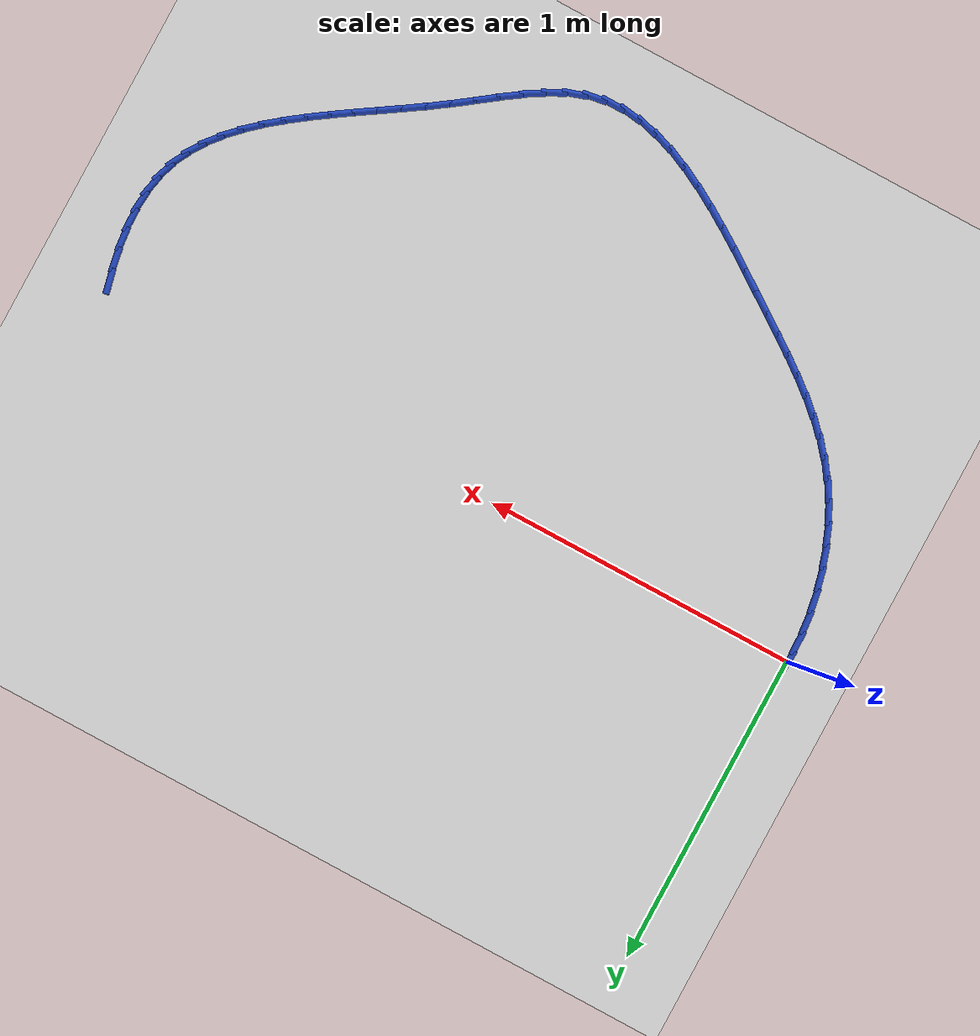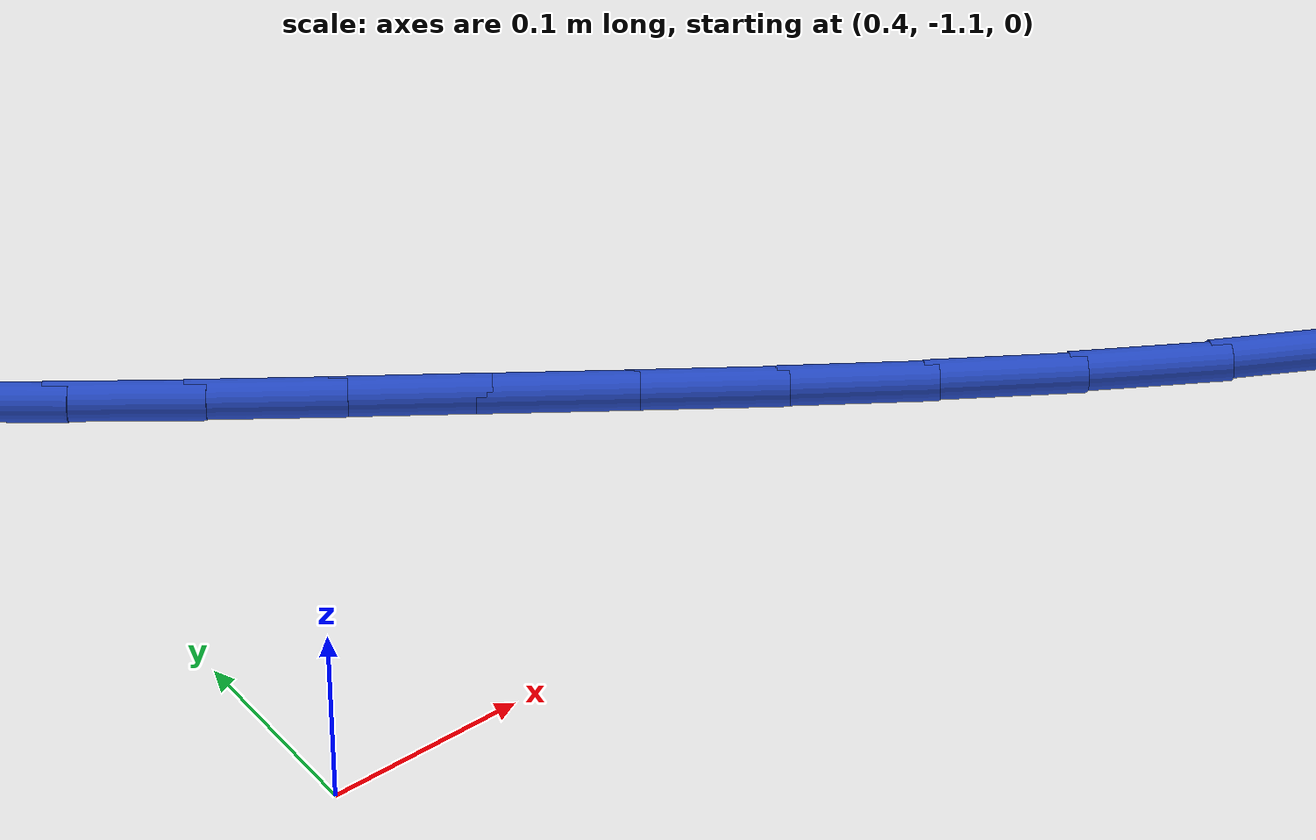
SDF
<sdf version="1.6">
 <world name="default">
  <model name="ground_plane">
   <static>1</static>
   <link name="link">
    <collision name="collision">
     <geometry><plane><normal>0 0 1</normal><size>100 100</size></plane></geometry>
     <surface><friction><ode><mu>100</mu><mu2>50</mu2></ode></friction></surface>
    </collision>
    <visual name="visual">
     <cast_shadows>0</cast_shadows>
     <geometry><plane><normal>0 0 1</normal><size>100 100</size></plane></geometry>
     <material>
      <script><uri>file://media/materials/scripts/gazebo.material</uri><name>Gazebo/WhiteGlow</name></script>
     </material>
    </visual>
   </link>
  </model>
  <model name="line">
   <link name="link_0">
    <pose>6.938893903907228e-18 1.6653345369377348e-16 0.01 0 1.57 1.5015300310632165</pose>
    <collision name="collision">
     <geometry><cylinder><radius>0.01</radius><length>0.08</length></cylinder></geometry>
    </collision>
    <visual name="visual">
     <material>
      <script><name>Gazebo/Blue</name><uri>file://media/materials/scripts/gazebo.material</uri></script>
     </material>
     <geometry><cylinder><radius>0.01</radius><length>0.08</length></cylinder></geometry>
    </visual>
   </link>
   <link name="link_55">
    <pose>2.316494528446898 -0.03746443017512041 0.01 0 1.57 -1.349133985504281</pose>
    <collision name="collision">
     <geometry><cylinder><radius>0.01</radius><length>0.08</length></cylinder></geometry>
    </collision>
    <visual name="visual">
     <material>
      <script><name>Gazebo/Blue</name><uri>file://media/materials/scripts/gazebo.material</uri></script>
     </material>
     <geometry><cylinder><radius>0.01</radius><length>0.08</length></cylinder></geometry>
    </visual>
   </link>
   <link name="link_56">
    <pose>2.331146773982533 -0.10247989588722398 0.01 0 1.57 -1.4071625238766812</pose>
    <collision name="collision">
     <geometry><cylinder><radius>0.01</radius><length>0.08</length></cylinder></geometry>
    </collision>
    <visual name="visual">
     <material>
      <script><name>Gazebo/Blue</name><uri>file://media/materials/scripts/gazebo.material</uri></script>
     </material>
     <geometry><cylinder><radius>0.01</radius><length>0.08</length></cylinder></geometry>
    </visual>
   </link>
   <link name="link_57">
    <pose>2.341644826084744 -0.1660620258689401 0.01 0 1.57 -1.4788177440043515</pose>
    <collision name="collision">
     <geometry><cylinder><radius>0.01</radius><length>0.08</length></cylinder></geometry>
    </collision>
    <visual name="visual">
     <material>
      <script><name>Gazebo/Blue</name><uri>file://media/materials/scripts/gazebo.material</uri></script>
     </material>
     <geometry><cylinder><radius>0.01</radius><length>0.08</length></cylinder></geometry>
    </visual>
   </link>
   <link name="link_58">
    <pose>2.347354452801604 -0.2279624835045941 0.01 0 1.57 -1.5660111835181925</pose>
    <collision name="collision">
     <geometry><cylinder><radius>0.01</radius><length>0.08</length></cylinder></geometry>
    </collision>
    <visual name="visual">
     <material>
      <script><name>Gazebo/Blue</name><uri>file://media/materials/scripts/gazebo.material</uri></script>
     </material>
     <geometry><cylinder><radius>0.01</radius><length>0.08</length></cylinder></geometry>
    </visual>
   </link>
   <link name="link_59">
    <pose>2.347641422181183 -0.28793293217851473 0.01 0 1.57 1.47128684072444</pose>
    <collision name="collision">
     <geometry><cylinder><radius>0.01</radius><length>0.08</length></cylinder></geometry>
    </collision>
    <visual name="visual">
     <material>
      <script><name>Gazebo/Blue</name><uri>file://media/materials/scripts/gazebo.material</uri></script>
     </material>
     <geometry><cylinder><radius>0.01</radius><length>0.08</length></cylinder></geometry>
    </visual>
   </link>
   <link name="link_60">
    <pose>2.3418715022715553 -0.3457250352750275 0.01 0 1.57 1.3494161890201135</pose>
    <collision name="collision">
     <geometry><cylinder><radius>0.01</radius><length>0.08</length></cylinder></geometry>
    </collision>
    <visual name="visual">
     <material>
      <script><name>Gazebo/Blue</name><uri>file://media/materials/scripts/gazebo.material</uri></script>
     </material>
     <geometry><cylinder><radius>0.01</radius><length>0.08</length></cylinder></geometry>
    </visual>
   </link>
   <link name="link_61">
    <pose>2.329410461120791 -0.40109045617846106 0.01 0 1.57 1.2118776064479035</pose>
    <collision name="collision">
     <geometry><cylinder><radius>0.01</radius><length>0.08</length></cylinder></geometry>
    </collision>
    <visual name="visual">
     <material>
      <script><name>Gazebo/Blue</name><uri>file://media/materials/scripts/gazebo.material</uri></script>
     </material>
     <geometry><cylinder><radius>0.01</radius><length>0.08</length></cylinder></geometry>
    </visual>
   </link>
   <link name="link_62">
    <pose>2.309640183224338 -0.45378746545434173 0.01 0 1.57 1.0739958529269882</pose>
    <collision name="collision">
     <geometry><cylinder><radius>0.01</radius><length>0.08</length></cylinder></geometry>
    </collision>
    <visual name="visual">
     <material>
      <script><name>Gazebo/Blue</name><uri>file://media/materials/scripts/gazebo.material</uri></script>
     </material>
     <geometry><cylinder><radius>0.01</radius><length>0.08</length></cylinder></geometry>
    </visual>
   </link>
   <link name="link_63">
    <pose>2.2825196908050236 -0.5038109400029563 0.01 0 1.57 0.953889230161915</pose>
    <collision name="collision">
     <geometry><cylinder><radius>0.01</radius><length>0.08</length></cylinder></geometry>
    </collision>
    <visual name="visual">
     <material>
      <script><name>Gazebo/Blue</name><uri>file://media/materials/scripts/gazebo.material</uri></script>
     </material>
     <geometry><cylinder><radius>0.01</radius><length>0.08</length></cylinder></geometry>
    </visual>
   </link>
   <link name="link_64">
    <pose>2.2487303452745486 -0.5514518905931977 0.01 0 1.57 0.8537202731277138</pose>
    <collision name="collision">
     <geometry><cylinder><radius>0.01</radius><length>0.08</length></cylinder></geometry>
    </collision>
    <visual name="visual">
     <material>
      <script><name>Gazebo/Blue</name><uri>file://media/materials/scripts/gazebo.material</uri></script>
     </material>
     <geometry><cylinder><radius>0.01</radius><length>0.08</length></cylinder></geometry>
    </visual>
   </link>
   <link name="link_65">
    <pose>2.2089991240196016 -0.5970200289523921 0.01 0 1.57 0.7725417804400813</pose>
    <collision name="collision">
     <geometry><cylinder><radius>0.01</radius><length>0.08</length></cylinder></geometry>
    </collision>
    <visual name="visual">
     <material>
      <script><name>Gazebo/Blue</name><uri>file://media/materials/scripts/gazebo.material</uri></script>
     </material>
     <geometry><cylinder><radius>0.01</radius><length>0.08</length></cylinder></geometry>
    </visual>
   </link>
   <link name="link_66">
    <pose>2.164053004426871 -0.6408250668078661 0.01 0 1.57 0.7083884980047604</pose>
    <collision name="collision">
     <geometry><cylinder><radius>0.01</radius><length>0.08</length></cylinder></geometry>
    </collision>
    <visual name="visual">
     <material>
      <script><name>Gazebo/Blue</name><uri>file://media/materials/scripts/gazebo.material</uri></script>
     </material>
     <geometry><cylinder><radius>0.01</radius><length>0.08</length></cylinder></geometry>
    </visual>
   </link>
   <link name="link_67">
    <pose>2.1146189638830473 -0.6831767158869441 0.01 0 1.57 0.6590969776963141</pose>
    <collision name="collision">
     <geometry><cylinder><radius>0.01</radius><length>0.08</length></cylinder></geometry>
    </collision>
    <visual name="visual">
     <material>
      <script><name>Gazebo/Blue</name><uri>file://media/materials/scripts/gazebo.material</uri></script>
     </material>
     <geometry><cylinder><radius>0.01</radius><length>0.08</length></cylinder></geometry>
    </visual>
   </link>
   <link name="link_68">
    <pose>2.06142397977482 -0.7243846879169534 0.01 0 1.57 0.6227236423256367</pose>
    <collision name="collision">
     <geometry><cylinder><radius>0.01</radius><length>0.08</length></cylinder></geometry>
    </collision>
    <visual name="visual">
     <material>
      <script><name>Gazebo/Blue</name><uri>file://media/materials/scripts/gazebo.material</uri></script>
     </material>
     <geometry><cylinder><radius>0.01</radius><length>0.08</length></cylinder></geometry>
    </visual>
   </link>
   <link name="link_69">
    <pose>2.0051950294888785 -0.7647586946252181 0.01 0 1.57 0.5977058247596212</pose>
    <collision name="collision">
     <geometry><cylinder><radius>0.01</radius><length>0.08</length></cylinder></geometry>
    </collision>
    <visual name="visual">
     <material>
      <script><name>Gazebo/Blue</name><uri>file://media/materials/scripts/gazebo.material</uri></script>
     </material>
     <geometry><cylinder><radius>0.01</radius><length>0.08</length></cylinder></geometry>
    </visual>
   </link>
   <link name="link_70">
    <pose>1.946659090411912 -0.8046084477390656 0.01 0 1.57 0.582894119983688</pose>
    <collision name="collision">
     <geometry><cylinder><radius>0.01</radius><length>0.08</length></cylinder></geometry>
    </collision>
    <visual name="visual">
     <material>
      <script><name>Gazebo/Blue</name><uri>file://media/materials/scripts/gazebo.material</uri></script>
     </material>
     <geometry><cylinder><radius>0.01</radius><length>0.08</length></cylinder></geometry>
    </visual>
   </link>
   <link name="link_71">
    <pose>1.8865431399306116 -0.8442436589858207 0.01 0 1.57 0.5775336122760786</pose>
    <collision name="collision">
     <geometry><cylinder><radius>0.01</radius><length>0.08</length></cylinder></geometry>
    </collision>
    <visual name="visual">
     <material>
      <script><name>Gazebo/Blue</name><uri>file://media/materials/scripts/gazebo.material</uri></script>
     </material>
     <geometry><cylinder><radius>0.01</radius><length>0.08</length></cylinder></geometry>
    </visual>
   </link>
   <link name="link_72">
    <pose>1.8255741554316651 -0.8839740400928099 0.01 0 1.57 0.5812326218579474</pose>
    <collision name="collision">
     <geometry><cylinder><radius>0.01</radius><length>0.08</length></cylinder></geometry>
    </collision>
    <visual name="visual">
     <material>
      <script><name>Gazebo/Blue</name><uri>file://media/materials/scripts/gazebo.material</uri></script>
     </material>
     <geometry><cylinder><radius>0.01</radius><length>0.08</length></cylinder></geometry>
    </visual>
   </link>
   <link name="link_73">
    <pose>1.7644791143017642 -0.9241093027873584 0.01 0 1.57 0.5939350325499942</pose>
    <collision name="collision">
     <geometry><cylinder><radius>0.01</radius><length>0.08</length></cylinder></geometry>
    </collision>
    <visual name="visual">
     <material>
      <script><name>Gazebo/Blue</name><uri>file://media/materials/scripts/gazebo.material</uri></script>
     </material>
     <geometry><cylinder><radius>0.01</radius><length>0.08</length></cylinder></geometry>
    </visual>
   </link>
   <link name="link_74">
    <pose>1.7039849939275964 -0.9649591587967927 0.01 0 1.57 0.6154628061830919</pose>
    <collision name="collision">
     <geometry><cylinder><radius>0.01</radius><length>0.08</length></cylinder></geometry>
    </collision>
    <visual name="visual">
     <material>
      <script><name>Gazebo/Blue</name><uri>file://media/materials/scripts/gazebo.material</uri></script>
     </material>
     <geometry><cylinder><radius>0.01</radius><length>0.08</length></cylinder></geometry>
    </visual>
   </link>
   <link name="link_75">
    <pose>1.6448027255853346 -1.0068058415942331 0.01 0 1.57 0.6320056717251769</pose>
    <collision name="collision">
     <geometry><cylinder><radius>0.01</radius><length>0.08</length></cylinder></geometry>
    </collision>
    <visual name="visual">
     <material>
      <script><name>Gazebo/Blue</name><uri>file://media/materials/scripts/gazebo.material</uri></script>
     </material>
     <geometry><cylinder><radius>0.01</radius><length>0.08</length></cylinder></geometry>
    </visual>
   </link>
   <link name="link_76">
    <pose>1.5871220712946568 -1.0490391053633579 0.01 0 1.57 0.6261360861631611</pose>
    <collision name="collision">
     <geometry><cylinder><radius>0.01</radius><length>0.08</length></cylinder></geometry>
    </collision>
    <visual name="visual">
     <material>
      <script><name>Gazebo/Blue</name><uri>file://media/materials/scripts/gazebo.material</uri></script>
     </material>
     <geometry><cylinder><radius>0.01</radius><length>0.08</length></cylinder></geometry>
    </visual>
   </link>
   <link name="link_77">
    <pose>1.5305097991781875 -1.0899818548072868 0.01 0 1.57 0.5950138947202867</pose>
    <collision name="collision">
     <geometry><cylinder><radius>0.01</radius><length>0.08</length></cylinder></geometry>
    </collision>
    <visual name="visual">
     <material>
      <script><name>Gazebo/Blue</name><uri>file://media/materials/scripts/gazebo.material</uri></script>
     </material>
     <geometry><cylinder><radius>0.01</radius><length>0.08</length></cylinder></geometry>
    </visual>
   </link>
   <link name="link_78">
    <pose>1.4744960627841008 -1.1278942937906338 0.01 0 1.57 0.5352896311089564</pose>
    <collision name="collision">
     <geometry><cylinder><radius>0.01</radius><length>0.08</length></cylinder></geometry>
    </collision>
    <visual name="visual">
     <material>
      <script><name>Gazebo/Blue</name><uri>file://media/materials/scripts/gazebo.material</uri></script>
     </material>
     <geometry><cylinder><radius>0.01</radius><length>0.08</length></cylinder></geometry>
    </visual>
   </link>
   <link name="link_79">
    <pose>1.418611015660574 -1.1610366261780107 0.01 0 1.57 0.4423591805968128</pose>
    <collision name="collision">
     <geometry><cylinder><radius>0.01</radius><length>0.08</length></cylinder></geometry>
    </collision>
    <visual name="visual">
     <material>
      <script><name>Gazebo/Blue</name><uri>file://media/materials/scripts/gazebo.material</uri></script>
     </material>
     <geometry><cylinder><radius>0.01</radius><length>0.08</length></cylinder></geometry>
    </visual>
   </link>
   <link name="link_80">
    <pose>1.3623848113557808 -1.1876690558340313 0.01 0 1.57 0.3117821677188346</pose>
    <collision name="collision">
     <geometry><cylinder><radius>0.01</radius><length>0.08</length></cylinder></geometry>
    </collision>
    <visual name="visual">
     <material>
      <script><name>Gazebo/Blue</name><uri>file://media/materials/scripts/gazebo.material</uri></script>
     </material>
     <geometry><cylinder><radius>0.01</radius><length>0.08</length></cylinder></geometry>
    </visual>
   </link>
   <link name="link_81">
    <pose>1.3053476034178986 -1.2060517866233078 0.01 0 1.57 0.1479164640156528</pose>
    <collision name="collision">
     <geometry><cylinder><radius>0.01</radius><length>0.08</length></cylinder></geometry>
    </collision>
    <visual name="visual">
     <material>
      <script><name>Gazebo/Blue</name><uri>file://media/materials/scripts/gazebo.material</uri></script>
     </material>
     <geometry><cylinder><radius>0.01</radius><length>0.08</length></cylinder></geometry>
    </visual>
   </link>
   <link name="link_82">
    <pose>1.2471017717166746 -1.2147306926827095 0.01 0 1.57 -0.012105895671808859</pose>
    <collision name="collision">
     <geometry><cylinder><radius>0.01</radius><length>0.08</length></cylinder></geometry>
    </collision>
    <visual name="visual">
     <material>
      <script><name>Gazebo/Blue</name><uri>file://media/materials/scripts/gazebo.material</uri></script>
     </material>
     <geometry><cylinder><radius>0.01</radius><length>0.08</length></cylinder></geometry>
    </visual>
   </link>
   <link name="link_83">
    <pose>1.1876946365423633 -1.214011480967643 0.01 0 1.57 -0.15033646269992318</pose>
    <collision name="collision">
     <geometry><cylinder><radius>0.01</radius><length>0.08</length></cylinder></geometry>
    </collision>
    <visual name="visual">
     <material>
      <script><name>Gazebo/Blue</name><uri>file://media/materials/scripts/gazebo.material</uri></script>
     </material>
     <geometry><cylinder><radius>0.01</radius><length>0.08</length></cylinder></geometry>
    </visual>
   </link>
   <link name="link_84">
    <pose>1.1273428048362553 -1.2048694226953693 0.01 0 1.57 -0.2651889847809809</pose>
    <collision name="collision">
     <geometry><cylinder><radius>0.01</radius><length>0.08</length></cylinder></geometry>
    </collision>
    <visual name="visual">
     <material>
      <script><name>Gazebo/Blue</name><uri>file://media/materials/scripts/gazebo.material</uri></script>
     </material>
     <geometry><cylinder><radius>0.01</radius><length>0.08</length></cylinder></geometry>
    </visual>
   </link>
   <link name="link_85">
    <pose>1.0662632132685728 -1.1882810932303478 0.01 0 1.57 -0.35822423260532243</pose>
    <collision name="collision">
     <geometry><cylinder><radius>0.01</radius><length>0.08</length></cylinder></geometry>
    </collision>
    <visual name="visual">
     <material>
      <script><name>Gazebo/Blue</name><uri>file://media/materials/scripts/gazebo.material</uri></script>
     </material>
     <geometry><cylinder><radius>0.01</radius><length>0.08</length></cylinder></geometry>
    </visual>
   </link>
   <link name="link_86">
    <pose>1.0046727985095427 -1.1652230679370392 0.01 0 1.57 -0.43226336848495944</pose>
    <collision name="collision">
     <geometry><cylinder><radius>0.01</radius><length>0.08</length></cylinder></geometry>
    </collision>
    <visual name="visual">
     <material>
      <script><name>Gazebo/Blue</name><uri>file://media/materials/scripts/gazebo.material</uri></script>
     </material>
     <geometry><cylinder><radius>0.01</radius><length>0.08</length></cylinder></geometry>
    </visual>
   </link>
   <link name="link_87">
    <pose>0.9427884972293878 -1.1366719221799026 0.01 0 1.57 -0.4902298259279286</pose>
    <collision name="collision">
     <geometry><cylinder><radius>0.01</radius><length>0.08</length></cylinder></geometry>
    </collision>
    <visual name="visual">
     <material>
      <script><name>Gazebo/Blue</name><uri>file://media/materials/scripts/gazebo.material</uri></script>
     </material>
     <geometry><cylinder><radius>0.01</radius><length>0.08</length></cylinder></geometry>
    </visual>
   </link>
   <link name="link_88">
    <pose>0.8808272460983337 -1.1036042313233987 0.01 0 1.57 -0.534629829178754</pose>
    <collision name="collision">
     <geometry><cylinder><radius>0.01</radius><length>0.08</length></cylinder></geometry>
    </collision>
    <visual name="visual">
     <material>
      <script><name>Gazebo/Blue</name><uri>file://media/materials/scripts/gazebo.material</uri></script>
     </material>
     <geometry><cylinder><radius>0.01</radius><length>0.08</length></cylinder></geometry>
    </visual>
   </link>
   <link name="link_89">
    <pose>0.819005981786604 -1.066996570731987 0.01 0 1.57 -0.5673934449489114</pose>
    <collision name="collision">
     <geometry><cylinder><radius>0.01</radius><length>0.08</length></cylinder></geometry>
    </collision>
    <visual name="visual">
     <material>
      <script><name>Gazebo/Blue</name><uri>file://media/materials/scripts/gazebo.material</uri></script>
     </material>
     <geometry><cylinder><radius>0.01</radius><length>0.08</length></cylinder></geometry>
    </visual>
   </link>
   <link name="link_90">
    <pose>0.7575416409644244 -1.0278255157701284 0.01 0 1.57 -0.589867417688599</pose>
    <collision name="collision">
     <geometry><cylinder><radius>0.01</radius><length>0.08</length></cylinder></geometry>
    </collision>
    <visual name="visual">
     <material>
      <script><name>Gazebo/Blue</name><uri>file://media/materials/scripts/gazebo.material</uri></script>
     </material>
     <geometry><cylinder><radius>0.01</radius><length>0.08</length></cylinder></geometry>
    </visual>
   </link>
   <link name="link_91">
    <pose>0.6966511603020182 -0.9870676418022813 0.01 0 1.57 -0.6028473734805408</pose>
    <collision name="collision">
     <geometry><cylinder><radius>0.01</radius><length>0.08</length></cylinder></geometry>
    </collision>
    <visual name="visual">
     <material>
      <script><name>Gazebo/Blue</name><uri>file://media/materials/scripts/gazebo.material</uri></script>
     </material>
     <geometry><cylinder><radius>0.01</radius><length>0.08</length></cylinder></geometry>
    </visual>
   </link>
   <link name="link_92">
    <pose>0.6365514764696119 -0.9456995241929078 0.01 0 1.57 -0.6066017860008852</pose>
    <collision name="collision">
     <geometry><cylinder><radius>0.01</radius><length>0.08</length></cylinder></geometry>
    </collision>
    <visual name="visual">
     <material>
      <script><name>Gazebo/Blue</name><uri>file://media/materials/scripts/gazebo.material</uri></script>
     </material>
     <geometry><cylinder><radius>0.01</radius><length>0.08</length></cylinder></geometry>
    </visual>
   </link>
   <link name="link_93">
    <pose>0.5774595541512263 -0.9046972567176099 0.01 0 1.57 -0.6054208264946359</pose>
    <collision name="collision">
     <geometry><cylinder><radius>0.01</radius><length>0.08</length></cylinder></geometry>
    </collision>
    <visual name="visual">
     <material>
      <script><name>Gazebo/Blue</name><uri>file://media/materials/scripts/gazebo.material</uri></script>
     </material>
     <geometry><cylinder><radius>0.01</radius><length>0.08</length></cylinder></geometry>
    </visual>
   </link>
   <link name="link_94">
    <pose>0.5196142210312957 -0.8646610834701531 0.01 0 1.57 -0.6120266523969918</pose>
    <collision name="collision">
     <geometry><cylinder><radius>0.01</radius><length>0.08</length></cylinder></geometry>
    </collision>
    <visual name="visual">
     <material>
      <script><name>Gazebo/Blue</name><uri>file://media/materials/scripts/gazebo.material</uri></script>
     </material>
     <geometry><cylinder><radius>0.01</radius><length>0.08</length></cylinder></geometry>
    </visual>
   </link>
   <link name="link_95">
    <pose>0.463315302319512 -0.8251426321589045 0.01 0 1.57 -0.6292319875537252</pose>
    <collision name="collision">
     <geometry><cylinder><radius>0.01</radius><length>0.08</length></cylinder></geometry>
    </collision>
    <visual name="visual">
     <material>
      <script><name>Gazebo/Blue</name><uri>file://media/materials/scripts/gazebo.material</uri></script>
     </material>
     <geometry><cylinder><radius>0.01</radius><length>0.08</length></cylinder></geometry>
    </visual>
   </link>
   <link name="link_96">
    <pose>0.4088731780244337 -0.7855120815730244 0.01 0 1.57 -0.6576273390119843</pose>
    <collision name="collision">
     <geometry><cylinder><radius>0.01</radius><length>0.08</length></cylinder></geometry>
    </collision>
    <visual name="visual">
     <material>
      <script><name>Gazebo/Blue</name><uri>file://media/materials/scripts/gazebo.material</uri></script>
     </material>
     <geometry><cylinder><radius>0.01</radius><length>0.08</length></cylinder></geometry>
    </visual>
   </link>
   <link name="link_97">
    <pose>0.3565982281546171 -0.7451396105016722 0.01 0 1.57 -0.6976511420278712</pose>
    <collision name="collision">
     <geometry><cylinder><radius>0.01</radius><length>0.08</length></cylinder></geometry>
    </collision>
    <visual name="visual">
     <material>
      <script><name>Gazebo/Blue</name><uri>file://media/materials/scripts/gazebo.material</uri></script>
     </material>
     <geometry><cylinder><radius>0.01</radius><length>0.08</length></cylinder></geometry>
    </visual>
   </link>
   <link name="link_98">
    <pose>0.30680083271861897 -0.7033953977340069 0.01 0 1.57 -0.7494522539486107</pose>
    <collision name="collision">
     <geometry><cylinder><radius>0.01</radius><length>0.08</length></cylinder></geometry>
    </collision>
    <visual name="visual">
     <material>
      <script><name>Gazebo/Blue</name><uri>file://media/materials/scripts/gazebo.material</uri></script>
     </material>
     <geometry><cylinder><radius>0.01</radius><length>0.08</length></cylinder></geometry>
    </visual>
   </link>
   <link name="link_99">
    <pose>0.25979137172499767 -0.6596496220591898 0.01 0 1.57 -0.8127040286282478</pose>
    <collision name="collision">
     <geometry><cylinder><radius>0.01</radius><length>0.08</length></cylinder></geometry>
    </collision>
    <visual name="visual">
     <material>
      <script><name>Gazebo/Blue</name><uri>file://media/materials/scripts/gazebo.material</uri></script>
     </material>
     <geometry><cylinder><radius>0.01</radius><length>0.08</length></cylinder></geometry>
    </visual>
   </link>
   <link name="link_100">
    <pose>0.21588022518230918 -0.6132724622663794 0.01 0 1.57 -0.8864048207941807</pose>
    <collision name="collision">
     <geometry><cylinder><radius>0.01</radius><length>0.08</length></cylinder></geometry>
    </collision>
    <visual name="visual">
     <material>
      <script><name>Gazebo/Blue</name><uri>file://media/materials/scripts/gazebo.material</uri></script>
     </material>
     <geometry><cylinder><radius>0.01</radius><length>0.08</length></cylinder></geometry>
    </visual>
   </link>
   <link name="link_101">
    <pose>0.1753777730991118 -0.5636340971447364 0.01 0 1.57 -0.9683550883492186</pose>
    <collision name="collision">
     <geometry><cylinder><radius>0.01</radius><length>0.08</length></cylinder></geometry>
    </collision>
    <visual name="visual">
     <material>
      <script><name>Gazebo/Blue</name><uri>file://media/materials/scripts/gazebo.material</uri></script>
     </material>
     <geometry><cylinder><radius>0.01</radius><length>0.08</length></cylinder></geometry>
    </visual>
   </link>
   <link name="link_102">
    <pose>0.1385900493966339 -0.5101423159782531 0.01 0 1.57 -1.0501573059248943</pose>
    <collision name="collision">
     <geometry><cylinder><radius>0.01</radius><length>0.08</length></cylinder></geometry>
    </collision>
    <visual name="visual">
     <material>
      <script><name>Gazebo/Blue</name><uri>file://media/materials/scripts/gazebo.material</uri></script>
     </material>
     <geometry><cylinder><radius>0.01</radius><length>0.08</length></cylinder></geometry>
    </visual>
   </link>
   <link name="link_103">
    <pose>0.10574678000172073 -0.452865267867043 0.01 0 1.57 -1.1269487206155133</pose>
    <collision name="collision">
     <geometry><cylinder><radius>0.01</radius><length>0.08</length></cylinder></geometry>
    </collision>
    <visual name="visual">
     <material>
      <script><name>Gazebo/Blue</name><uri>file://media/materials/scripts/gazebo.material</uri></script>
     </material>
     <geometry><cylinder><radius>0.01</radius><length>0.08</length></cylinder></geometry>
    </visual>
   </link>
   <link name="link_104">
    <pose>0.07701258733082708 -0.39243449952761933 0.01 0 1.57 -1.2000719641440727</pose>
    <collision name="collision">
     <geometry><cylinder><radius>0.01</radius><length>0.08</length></cylinder></geometry>
    </collision>
    <visual name="visual">
     <material>
      <script><name>Gazebo/Blue</name><uri>file://media/materials/scripts/gazebo.material</uri></script>
     </material>
     <geometry><cylinder><radius>0.01</radius><length>0.08</length></cylinder></geometry>
    </visual>
   </link>
   <link name="link_105">
    <pose>0.05255000633913432 -0.3294996223046511 0.01 0 1.57 -1.2709832376273522</pose>
    <collision name="collision">
     <geometry><cylinder><radius>0.01</radius><length>0.08</length></cylinder></geometry>
    </collision>
    <visual name="visual">
     <material>
      <script><name>Gazebo/Blue</name><uri>file://media/materials/scripts/gazebo.material</uri></script>
     </material>
     <geometry><cylinder><radius>0.01</radius><length>0.08</length></cylinder></geometry>
    </visual>
   </link>
   <link name="link_106">
    <pose>0.03252157198182243 -0.2647102475428046 0.01 0 1.57 -1.3410889013998544</pose>
    <collision name="collision">
     <geometry><cylinder><radius>0.01</radius><length>0.08</length></cylinder></geometry>
    </collision>
    <visual name="visual">
     <material>
      <script><name>Gazebo/Blue</name><uri>file://media/materials/scripts/gazebo.material</uri></script>
     </material>
     <geometry><cylinder><radius>0.01</radius><length>0.08</length></cylinder></geometry>
    </visual>
   </link>
   <link name="link_107">
    <pose>0.017089819214072585 -0.19871598658674916 0.01 0 1.57 -1.4117805090319209</pose>
    <collision name="collision">
     <geometry><cylinder><radius>0.01</radius><length>0.08</length></cylinder></geometry>
    </collision>
    <visual name="visual">
     <material>
      <script><name>Gazebo/Blue</name><uri>file://media/materials/scripts/gazebo.material</uri></script>
     </material>
     <geometry><cylinder><radius>0.01</radius><length>0.08</length></cylinder></geometry>
    </visual>
   </link>
   <link name="link_108">
    <pose>0.006417282991065027 -0.1321664507811508 0.01 0 1.57 -1.4844751062910626</pose>
    <collision name="collision">
     <geometry><cylinder><radius>0.01</radius><length>0.08</length></cylinder></geometry>
    </collision>
    <visual name="visual">
     <material>
      <script><name>Gazebo/Blue</name><uri>file://media/materials/scripts/gazebo.material</uri></script>
     </material>
     <geometry><cylinder><radius>0.01</radius><length>0.08</length></cylinder></geometry>
    </visual>
   </link>
   <link name="link_109">
    <pose>0.00066649826798066 -0.06571125147067894 0.01 0 1.57 -1.5606538413197397</pose>
    <collision name="collision">
     <geometry><cylinder><radius>0.01</radius><length>0.08</length></cylinder></geometry>
    </collision>
    <visual name="visual">
     <material>
      <script><name>Gazebo/Blue</name><uri>file://media/materials/scripts/gazebo.material</uri></script>
     </material>
     <geometry><cylinder><radius>0.01</radius><length>0.08</length></cylinder></geometry>
    </visual>
   </link>
  </model>
 </world>
</sdf>
